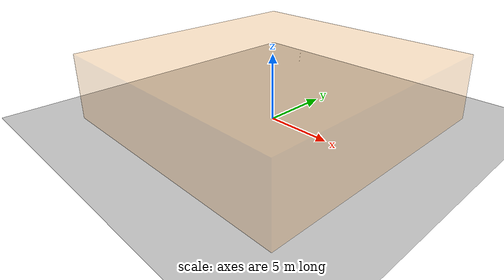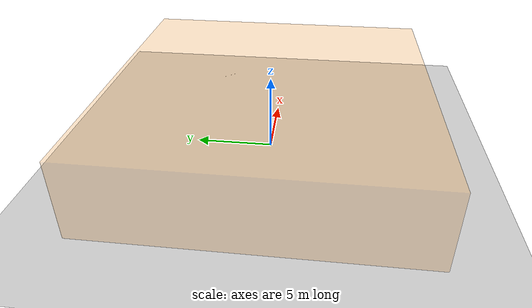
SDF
<sdf version="1.5">
 <world name="default">
  <include><uri>model://sun</uri></include>
  <include><uri>model://ground_plane</uri><pose>0 0 -0.001 0 0 0</pose></include>
  <model name="airspace">
   <link name="link_0">
    <pose>0 0 2.5 0 0 0</pose>
    <gravity>0</gravity>
    <kinematic>1</kinematic>
    <visual name="airspace_visual">
     <geometry><box><size>20 20 5.0</size></box></geometry>
     <material>
      <script>
       <uri>file://media/materials/scripts/gazebo.material</uri>
       <name>Gazebo/DarkOrangeTransparentOverlay</name>
      </script>
     </material>
     <cast_shadows>0</cast_shadows>
     <transparency>0.75</transparency>
    </visual>
   </link>
  </model>
  <include><uri>model://gate</uri><pose>0.5 -0.5 0.2 0 0 2.35619449019</pose></include>
  <model name="wall_0">
   <link name="link_0">
    <pose>1.25 1.5 2.5 0 0 2.26553460299</pose>
    <gravity>0</gravity>
    <kinematic>1</kinematic>
    <visual name="wall_0_visual">
     <geometry><box><size>3.90512483795 0.01 5.0</size></box></geometry>
     <material>
      <script>
       <uri>file://media/materials/scripts/gazebo.material</uri>
       <name>Gazebo/DarkOrangeTransparentOverlay</name>
      </script>
     </material>
    </visual>
   </link>
  </model>
  <physics default="0" name="default_physics" type="ode">
   <gravity>0 0 -9.8066</gravity>
   <ode>
    <solver>
     <type>quick</type>
     <iters>20</iters>
     <sor>1.3</sor>
     <use_dynamic_moi_rescaling>0</use_dynamic_moi_rescaling>
    </solver>
    <constraints>
     <cfm>0</cfm>
     <erp>0.2</erp>
     <contact_max_correcting_vel>100</contact_max_correcting_vel>
     <contact_surface_layer>0.001</contact_surface_layer>
    </constraints>
   </ode>
   <max_step_size>0.002</max_step_size>
   <real_time_factor>1</real_time_factor>
   <real_time_update_rate>500</real_time_update_rate>
   <magnetic_field>6e-06 2.3e-05 -4.2e-05</magnetic_field>
  </physics>
 </world>
</sdf>

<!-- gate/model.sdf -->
<sdf version='1.6'>
  <model name='gate'>
    <link name='link_0'>
      <pose frame=''>0 0 0 0 -0 0</pose>
      <inertial>
        <mass>1</mass>
        <inertia>
          <ixx>0.166667</ixx>
          <ixy>0</ixy>
          <ixz>0</ixz>
          <iyy>0.166667</iyy>
          <iyz>0</iyz>
          <izz>0.166667</izz>
        </inertia>
        <pose frame=''>0 0 0 0 -0 0</pose>
      </inertial>
      <gravity>0</gravity>
      <self_collide>0</self_collide>
      <kinematic>1</kinematic>
      <visual name='ModelPreview_0::link_0::visual_3'>
        <pose frame=''>-0.4 0 -0.1 0 -0 0</pose>
        <geometry>
          <box>
            <size>0.2 1e-06 0.8</size>
          </box>
        </geometry>
        <material>
          <script>
            <uri>file://media/materials/scripts/gazebo.material</uri>
            <name>Gazebo/DarkOrangeTransparentOverlay</name>
          </script>
        </material>
        <cast_shadows>1</cast_shadows>
        <transparency>0</transparency>
      </visual>
      <visual name='ModelPreview_0::link_0::visual_4'>
        <pose frame=''>0.4 0 -0.1 0 -0 0</pose>
        <geometry>
          <box>
            <size>0.2 1e-06 0.8</size>
          </box>
        </geometry>
        <material>
          <script>
            <uri>file://media/materials/scripts/gazebo.material</uri>
            <name>Gazebo/DarkOrangeTransparentOverlay</name>
          </script>
        </material>
        <cast_shadows>1</cast_shadows>
        <transparency>0</transparency>
      </visual>
      <visual name='visual'>
        <pose frame=''>0 0 0.4 0 -0 0</pose>
        <geometry>
          <box>
            <size>1 1e-06 0.2</size>
          </box>
        </geometry>
        <material>
          <script>
            <uri>file://media/materials/scripts/gazebo.material</uri>
            <name>Gazebo/DarkOrangeTransparentOverlay</name>
          </script>
        </material>
        <cast_shadows>1</cast_shadows>
        <transparency>0</transparency>
      </visual>
      <collision name='collision_1'>
        <laser_retro>0</laser_retro>
        <max_contacts>10</max_contacts>
        <pose frame=''>-0.4 0 -0.1 0 -0 0</pose>
        <geometry>
          <box>
            <size>0.2 1e-06 0.8</size>
          </box>
        </geometry>
        <surface>
          <friction>
            <ode>
              <mu>1</mu>
              <mu2>1</mu2>
              <fdir1>0 0 0</fdir1>
              <slip1>0</slip1>
              <slip2>0</slip2>
            </ode>
            <torsional>
              <coefficient>1</coefficient>
              <patch_radius>0</patch_radius>
              <surface_radius>0</surface_radius>
              <use_patch_radius>1</use_patch_radius>
              <ode>
                <slip>0</slip>
              </ode>
            </torsional>
          </friction>
          <bounce>
            <restitution_coefficient>0</restitution_coefficient>
            <threshold>1e+06</threshold>
          </bounce>
          <contact>
            <collide_without_contact>0</collide_without_contact>
            <collide_without_contact_bitmask>1</collide_without_contact_bitmask>
            <collide_bitmask>1</collide_bitmask>
            <ode>
              <soft_cfm>0</soft_cfm>
              <soft_erp>0.2</soft_erp>
              <kp>1e+13</kp>
              <kd>1</kd>
              <max_vel>0.01</max_vel>
              <min_depth>0</min_depth>
            </ode>
            <bullet>
              <split_impulse>1</split_impulse>
              <split_impulse_penetration_threshold>-0.01</split_impulse_penetration_threshold>
              <soft_cfm>0</soft_cfm>
              <soft_erp>0.2</soft_erp>
              <kp>1e+13</kp>
              <kd>1</kd>
            </bullet>
          </contact>
        </surface>
      </collision>
      <collision name='collision'>
        <laser_retro>0</laser_retro>
        <max_contacts>10</max_contacts>
        <pose frame=''>0 0 0.4 0 -0 0</pose>
        <geometry>
          <box>
            <size>1 1e-06 0.2</size>
          </box>
        </geometry>
        <surface>
          <friction>
            <ode>
              <mu>1</mu>
              <mu2>1</mu2>
              <fdir1>0 0 0</fdir1>
              <slip1>0</slip1>
              <slip2>0</slip2>
            </ode>
            <torsional>
              <coefficient>1</coefficient>
              <patch_radius>0</patch_radius>
              <surface_radius>0</surface_radius>
              <use_patch_radius>1</use_patch_radius>
              <ode>
                <slip>0</slip>
              </ode>
            </torsional>
          </friction>
          <bounce>
            <restitution_coefficient>0</restitution_coefficient>
            <threshold>1e+06</threshold>
          </bounce>
          <contact>
            <collide_without_contact>0</collide_without_contact>
            <collide_without_contact_bitmask>1</collide_without_contact_bitmask>
            <collide_bitmask>1</collide_bitmask>
            <ode>
              <soft_cfm>0</soft_cfm>
              <soft_erp>0.2</soft_erp>
              <kp>1e+13</kp>
              <kd>1</kd>
              <max_vel>0.01</max_vel>
              <min_depth>0</min_depth>
            </ode>
            <bullet>
              <split_impulse>1</split_impulse>
              <split_impulse_penetration_threshold>-0.01</split_impulse_penetration_threshold>
              <soft_cfm>0</soft_cfm>
              <soft_erp>0.2</soft_erp>
              <kp>1e+13</kp>
              <kd>1</kd>
            </bullet>
          </contact>
        </surface>
      </collision>
      <collision name='collision_2'>
        <laser_retro>0</laser_retro>
        <max_contacts>10</max_contacts>
        <pose frame=''>0.4 0 -0.1 0 -0 0</pose>
        <geometry>
          <box>
            <size>0.2 1e-06 0.8</size>
          </box>
        </geometry>
        <surface>
          <friction>
            <ode>
              <mu>1</mu>
              <mu2>1</mu2>
              <fdir1>0 0 0</fdir1>
              <slip1>0</slip1>
              <slip2>0</slip2>
            </ode>
            <torsional>
              <coefficient>1</coefficient>
              <patch_radius>0</patch_radius>
              <surface_radius>0</surface_radius>
              <use_patch_radius>1</use_patch_radius>
              <ode>
                <slip>0</slip>
              </ode>
            </torsional>
          </friction>
          <bounce>
            <restitution_coefficient>0</restitution_coefficient>
            <threshold>1e+06</threshold>
          </bounce>
          <contact>
            <collide_without_contact>0</collide_without_contact>
            <collide_without_contact_bitmask>1</collide_without_contact_bitmask>
            <collide_bitmask>1</collide_bitmask>
            <ode>
              <soft_cfm>0</soft_cfm>
              <soft_erp>0.2</soft_erp>
              <kp>1e+13</kp>
              <kd>1</kd>
              <max_vel>0.01</max_vel>
              <min_depth>0</min_depth>
            </ode>
            <bullet>
              <split_impulse>1</split_impulse>
              <split_impulse_penetration_threshold>-0.01</split_impulse_penetration_threshold>
              <soft_cfm>0</soft_cfm>
              <soft_erp>0.2</soft_erp>
              <kp>1e+13</kp>
              <kd>1</kd>
            </bullet>
          </contact>
        </surface>
      </collision>
    </link>
    <static>0</static>
    <allow_auto_disable>1</allow_auto_disable>
  </model>
</sdf>
